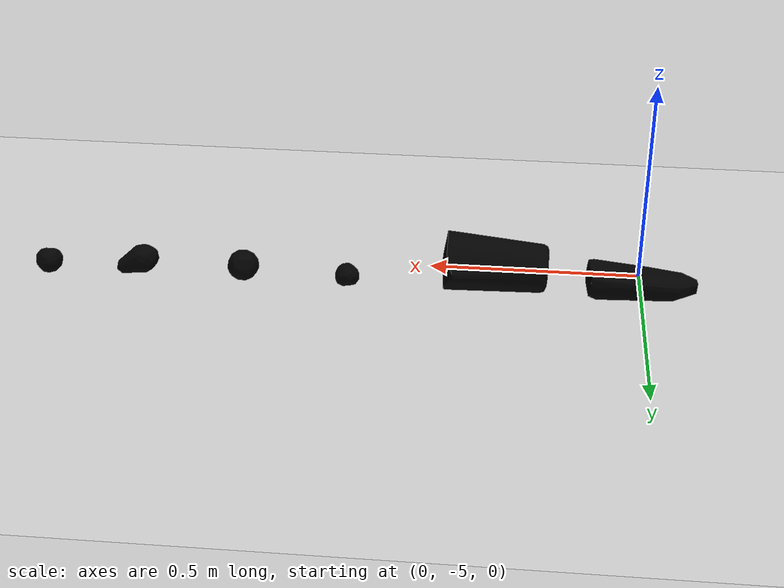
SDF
<sdf version="1.7">
 <world name="default">
  <model name="ground_plane">
   <static>1</static>
   <link name="link">
    <collision name="collision">
     <geometry><plane><normal>0 0 1</normal><size>100 100</size></plane></geometry>
     <surface><friction><ode><mu>100</mu><mu2>50</mu2></ode></friction></surface>
    </collision>
    <visual name="visual">
     <cast_shadows>0</cast_shadows>
     <geometry><plane><normal>0 0 1</normal><size>100 100</size></plane></geometry>
     <material>
      <script><uri>file://media/materials/scripts/gazebo.material</uri><name>Gazebo/Grey</name></script>
     </material>
    </visual>
   </link>
  </model>
  <model name="021_bleach_cleanser_textured_0">
   <pose>0.022925 -4.92046 0.032006 0.01846 -0.03749 -0.000578</pose>
   <link name="body">
    <inertial>
     <mass>1</mass>
     <inertia>
      <ixx>0.000787063</ixx>
      <ixy>0</ixy>
      <ixz>0</ixz>
      <iyy>0.00437242</iyy>
      <iyz>0</iyz>
      <izz>0.00469601</izz>
     </inertia>
    </inertial>
    <visual name="visual">
     <geometry><mesh><uri>model://021_bleach_cleanser_textured/textured.dae</uri></mesh></geometry>
     <pose>0.098235 0.024242 0.011384 -1.57068 0.010427 1.64133</pose>
    </visual>
    <collision name="collision">
     <geometry><mesh><uri>model://021_bleach_cleanser_textured/textured.col.dae</uri></mesh></geometry>
     <surface>
      <friction><ode><mu>0.8</mu><mu2>0.8</mu2><slip1>0</slip1><slip2>0</slip2></ode></friction>
      <contact><ode><kp>1e+06</kp><kd>1</kd><max_vel>0</max_vel></ode></contact>
     </surface>
     <pose>0.098235 0.024242 0.011384 -1.57068 0.010427 1.64133</pose>
    </collision>
   </link>
  </model>
  <model name="019_pitcher_base_textured_0">
   <pose>0.348984 -4.92008 0.064305 0.003883 -0.055867 0.009266</pose>
   <link name="body">
    <inertial>
     <mass>1</mass>
     <inertia>
      <ixx>0.00184488</ixx>
      <ixy>0</ixy>
      <ixz>0</ixz>
      <iyy>0.00520526</iyy>
      <iyz>0</iyz>
      <izz>0.00526765</izz>
     </inertia>
    </inertial>
    <visual name="visual">
     <geometry><mesh><uri>model://019_pitcher_base_textured/textured.dae</uri></mesh></geometry>
     <pose>-0.122949 0.010881 0.033247 -1.56469 -0.737195 -1.56113</pose>
    </visual>
    <collision name="collision">
     <geometry><mesh><uri>model://019_pitcher_base_textured/textured.col.dae</uri></mesh></geometry>
     <surface>
      <friction><ode><mu>0.8</mu><mu2>0.8</mu2><slip1>0</slip1><slip2>0</slip2></ode></friction>
      <contact><ode><kp>1e+06</kp><kd>1</kd><max_vel>0</max_vel></ode></contact>
     </surface>
     <pose>-0.122949 0.010881 0.033247 -1.56469 -0.737195 -1.56113</pose>
    </collision>
   </link>
  </model>
  <model name="018_plum_textured_0">
   <pose>0.693424 -4.8981 0.026581 0.077424 0.097282 0.015465</pose>
   <link name="body">
    <inertial>
     <mass>1</mass>
     <inertia>
      <ixx>0.000290856</ixx>
      <ixy>0</ixy>
      <ixz>0</ixz>
      <iyy>0.00030415</iyy>
      <iyz>0</iyz>
      <izz>0.000315373</izz>
     </inertia>
    </inertial>
    <visual name="visual">
     <geometry><mesh><uri>model://018_plum_textured/textured.dae</uri></mesh></geometry>
     <pose>0.002553 0.000601 -0.031554 0.713325 0.167933 -0.071282</pose>
    </visual>
    <collision name="collision">
     <geometry><mesh><uri>model://018_plum_textured/textured.col.dae</uri></mesh></geometry>
     <surface>
      <friction><ode><mu>0.8</mu><mu2>0.8</mu2><slip1>0</slip1><slip2>0</slip2></ode></friction>
      <contact><ode><kp>1e+06</kp><kd>1</kd><max_vel>0</max_vel></ode></contact>
     </surface>
     <pose>0.002553 0.000601 -0.031554 0.713325 0.167933 -0.071282</pose>
    </collision>
   </link>
  </model>
  <model name="017_orange_textured_0">
   <pose>0.943289 -4.9045 0.035644 0.063104 0.095395 -0.01249</pose>
   <link name="body">
    <inertial>
     <mass>1</mass>
     <inertia>
      <ixx>0.000525719</ixx>
      <ixy>0</ixy>
      <ixz>0</ixz>
      <iyy>0.000529734</iyy>
      <iyz>0</iyz>
      <izz>0.00054103</izz>
     </inertia>
    </inertial>
    <visual name="visual">
     <geometry><mesh><uri>model://017_orange_textured/textured.dae</uri></mesh></geometry>
     <pose>0.010241 0.036518 0.009011 2.75098 1.1508 1.40777</pose>
    </visual>
    <collision name="collision">
     <geometry><mesh><uri>model://017_orange_textured/textured.col.dae</uri></mesh></geometry>
     <surface>
      <friction><ode><mu>0.8</mu><mu2>0.8</mu2><slip1>0</slip1><slip2>0</slip2></ode></friction>
      <contact><ode><kp>1e+06</kp><kd>1</kd><max_vel>0</max_vel></ode></contact>
     </surface>
     <pose>0.010241 0.036518 0.009011 2.75098 1.1508 1.40777</pose>
    </collision>
   </link>
  </model>
  <model name="016_pear_textured_0">
   <pose>1.19506 -4.9132 0.031236 0.820597 0.31347 0.250138</pose>
   <link name="body">
    <inertial>
     <mass>1</mass>
     <inertia>
      <ixx>0.000401675</ixx>
      <ixy>0</ixy>
      <ixz>0</ixz>
      <iyy>0.000666356</iyy>
      <iyz>0</iyz>
      <izz>0.000680018</izz>
     </inertia>
    </inertial>
    <visual name="visual">
     <geometry><mesh><uri>model://016_pear_textured/textured.dae</uri></mesh></geometry>
     <pose>0.001637 -0.002005 -0.045579 0.398833 0.747192 -1.48546</pose>
    </visual>
    <collision name="collision">
     <geometry><mesh><uri>model://016_pear_textured/textured.col.dae</uri></mesh></geometry>
     <surface>
      <friction><ode><mu>0.8</mu><mu2>0.8</mu2><slip1>0</slip1><slip2>0</slip2></ode></friction>
      <contact><ode><kp>1e+06</kp><kd>1</kd><max_vel>0</max_vel></ode></contact>
     </surface>
     <pose>0.001637 -0.002005 -0.045579 0.398833 0.747192 -1.48546</pose>
    </collision>
   </link>
  </model>
  <model name="015_peach_textured_0">
   <pose>1.41417 -4.8934 0.028611 0.628096 -0.05596 0.024476</pose>
   <link name="body">
    <inertial>
     <mass>1</mass>
     <inertia>
      <ixx>0.000349642</ixx>
      <ixy>0</ixy>
      <ixz>0</ixz>
      <iyy>0.000379141</iyy>
      <iyz>0</iyz>
      <izz>0.000391393</izz>
     </inertia>
    </inertial>
    <visual name="visual">
     <geometry><mesh><uri>model://015_peach_textured/textured.dae</uri></mesh></geometry>
     <pose>0.002024 -0.031302 -0.009336 -0.536548 -0.573054 -0.803356</pose>
    </visual>
    <collision name="collision">
     <geometry><mesh><uri>model://015_peach_textured/textured.col.dae</uri></mesh></geometry>
     <surface>
      <friction><ode><mu>0.8</mu><mu2>0.8</mu2><slip1>0</slip1><slip2>0</slip2></ode></friction>
      <contact><ode><kp>1e+06</kp><kd>1</kd><max_vel>0</max_vel></ode></contact>
     </surface>
     <pose>0.002024 -0.031302 -0.009336 -0.536548 -0.573054 -0.803356</pose>
    </collision>
   </link>
  </model>
 </world>
</sdf>
